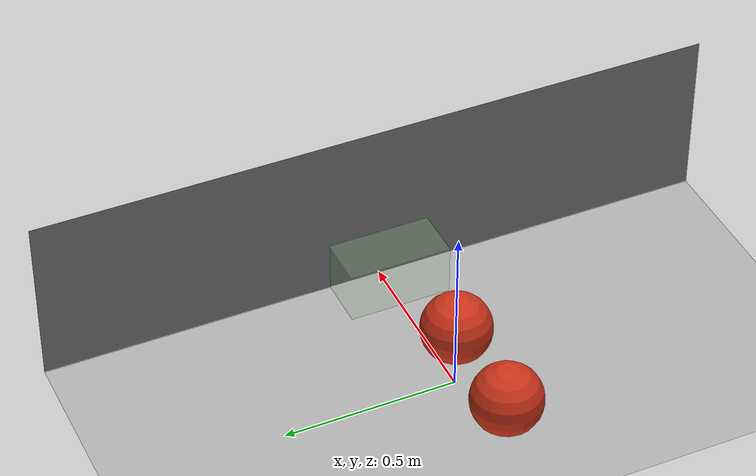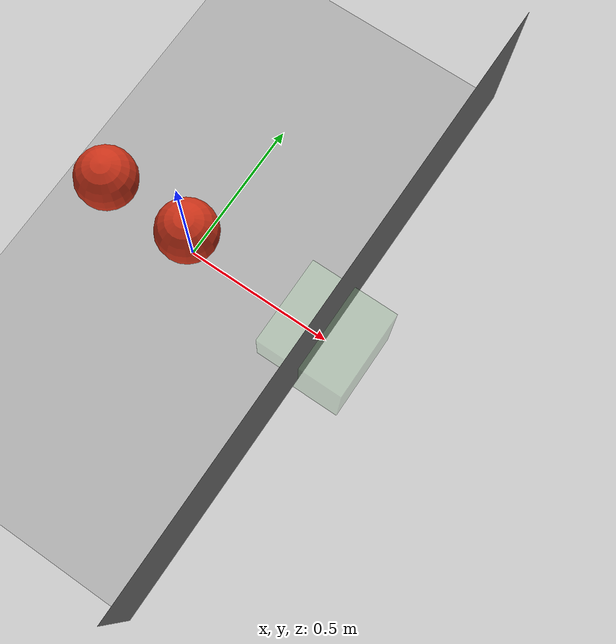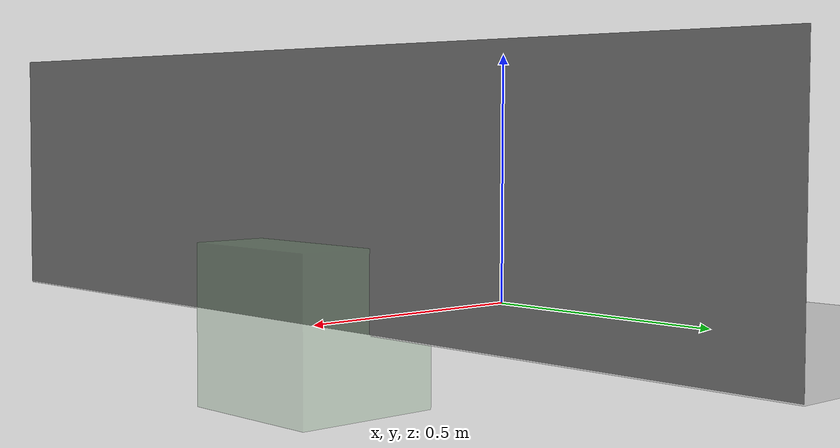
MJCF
<mujoco model="contact">
  <option gravity="4 0 -3"/>

  <worldbody>
    <light pos="0 0 3"/>
    <geom name="floor" type="plane" size=".5 1 .01"/>
    <geom name="wall" type="plane" size=".25 1 .05" zaxis="-1 0 0" pos=".5 0 .25"/>
    <site name="site" type="box" size=".15 .15 .15" pos=".5 0 0" rgba=".5 .7 .5 .3"/>

    <body name="b1" pos="0 0 .2">
      <freejoint/>
      <geom name="g1" size=".1" rgba=".8 .2 .1 1" mass="1"/>
    </body>

    <body name="b2" pos="-.3 0 .2">
      <freejoint/>
      <geom name="g2" size=".1" rgba=".8 .2 .1 1" mass="1"/>
    </body>
  </worldbody>

  <sensor>
    <contact name="all"/>
    <contact name="world" body1="world"/>
    <contact name="b1" body1="b1"/>
    <contact name="g1" geom1="g1"/>
    <contact name="b1:g2" body1="b1" geom2="g2"/>
    <contact name="b1:world" body1="b1" body2="world"/>
    <contact name="site" site="site"/>
    <contact name="site:wall" site="site" geom2="wall"/>
    <contact name="wall" geom1="wall" num="2" data="found force normal"/>
    <contact name="b2"         body1="b2" data="force normal" num="2"/>
    <contact name="b2_flipped" body2="b2" data="force normal" num="2"/>
    <contact name="b2_reduced" body2="b2" data="force normal" reduce="maxforce"/>
  </sensor>
</mujoco>
